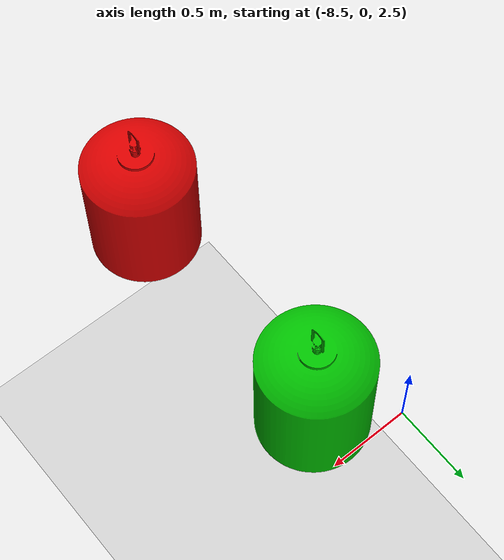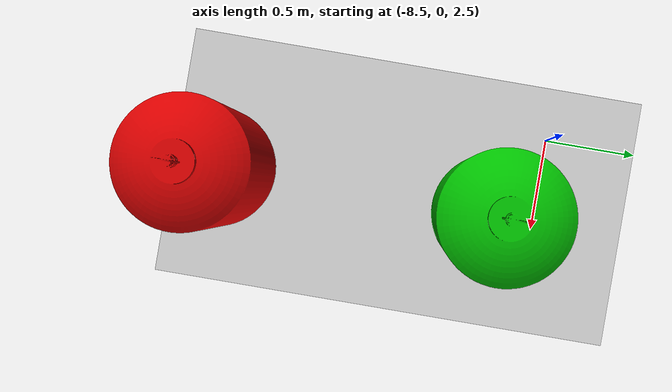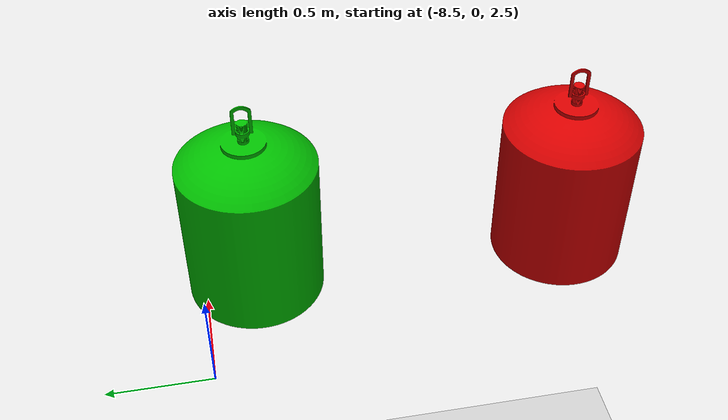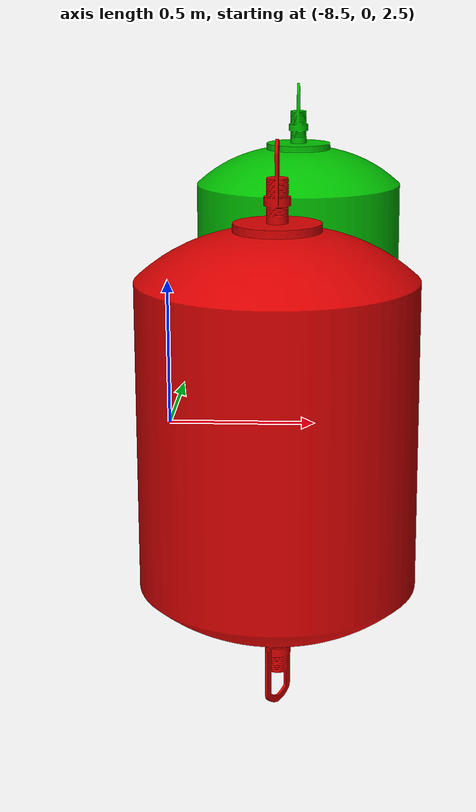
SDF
<?xml version="1.0" encoding="UTF-8"?>
<sdf version="1.9">

  <world name="interceptor_world">

    <physics name="default_physics" type="ode">
      <max_step_size>0.004</max_step_size>
      <real_time_factor>1.0</real_time_factor>
      <real_time_update_rate>250</real_time_update_rate>
    </physics>

    <gravity>0 0 -9.80665</gravity>

    <magnetic_field>
      6e-06 2.3e-05 -4.2e-05
    </magnetic_field>

    <atmosphere type="adiabatic"/>

    <spherical_coordinates>
      <surface_model>EARTH_WGS84</surface_model>
      <world_frame_orientation>ENU</world_frame_orientation>
      <latitude_deg>47.397971057728974</latitude_deg>
      <longitude_deg>8.546163739800146</longitude_deg>
      <elevation>0</elevation>
      <heading_deg>0</heading_deg>
    </spherical_coordinates>

    <scene>
      <grid>true</grid>
      <ambient>0.5 0.5 0.5 1</ambient>
      <background>0.7 0.7 0.7 1</background>
      <shadows>false</shadows>
    </scene>

    <model name="ground_plane">
      <static>true</static>

      <link name="link">

        <collision name="collision">
          <geometry>
            <plane>
              <normal>0 0 1</normal>
              <size>500 500</size>
            </plane>
          </geometry>

          <surface>
            <friction>
              <ode>
                <mu>1</mu>
                <mu2>1</mu2>
              </ode>
            </friction>
          </surface>
        </collision>

        <visual name="visual">
          <geometry>
            <plane>
              <normal>0 0 1</normal>
              <size>500 500</size>
            </plane>
          </geometry>

          <material>
            <ambient>0.8 0.8 0.8 1</ambient>
            <diffuse>0.8 0.8 0.8 1</diffuse>
            <specular>0.1 0.1 0.1 1</specular>
          </material>
        </visual>

      </link>
    </model>

    <light name="sun" type="directional">
      <pose>0 0 500 0 0 0</pose>
      <cast_shadows>false</cast_shadows>
      <intensity>1</intensity>
      <direction>-0.2 0.5 -0.8</direction>
      <diffuse>0.9 0.9 0.9 1</diffuse>
      <specular>0.2 0.2 0.2 1</specular>

      <attenuation>
        <range>2000</range>
        <constant>1</constant>
        <linear>0</linear>
        <quadratic>0</quadratic>
      </attenuation>
    </light>

    <!-- Birinci test: iki duba da sabit -->
    <include>
      <uri>model://red_buoy</uri>
      <name>moving_red_buoy</name>
      <pose>-8.0 -0.75 3 0 0 0</pose>
    </include>

    <include>
      <uri>model://green_buoy</uri>
      <name>fixed_green_buoy</name>
      <pose>-8.0 0.75 3 0 0 0</pose>
    </include>

  </world>

</sdf>

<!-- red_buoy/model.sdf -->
<sdf version="1.9">
  <model name="red_buoy">
    <static>true</static>

    <link name="link">

      <visual name="visual">

        <!-- STL modeli Y ekseninde dik export edildigi icin
             Gazebo Z-up sistemine 90 derece cevriliyor. -->
        <pose>0 0 0 1.5708 0 0</pose>

        <cast_shadows>false</cast_shadows>

        <geometry>
          <mesh>
            <uri>model://red_buoy/meshes/buoy.stl</uri>
          </mesh>
        </geometry>

        <material>
          <!-- Dengeli, saf ve mat kirmizi -->
          <ambient>0.55 0.00 0.00 1</ambient>
          <diffuse>0.85 0.00 0.00 1</diffuse>
          <specular>0.00 0.00 0.00 1</specular>
          <emissive>0.02 0.00 0.00 1</emissive>

          <pbr>
            <metal>
              <metalness>0.0</metalness>
              <roughness>1.0</roughness>
            </metal>
          </pbr>
        </material>

      </visual>

      <collision name="collision">
        <geometry>
          <cylinder>
            <radius>0.35</radius>
            <length>1.2</length>
          </cylinder>
        </geometry>
      </collision>

    </link>
  </model>
</sdf>

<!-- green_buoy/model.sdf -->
<sdf version="1.9">
  <model name="green_buoy">
    <static>true</static>

    <link name="link">

      <visual name="visual">

        <!-- STL modeli Y ekseninde dik export edildigi icin
             Gazebo Z-up sistemine 90 derece cevriliyor. -->
        <pose>0 0 0 1.5708 0 0</pose>

        <cast_shadows>false</cast_shadows>

        <geometry>
          <mesh>
            <uri>model://green_buoy/meshes/buoy.stl</uri>
          </mesh>
        </geometry>

        <material>
          <!-- Dengeli, saf ve mat kirmizi -->
          <ambient>0.00 0.40 0.00 1</ambient>
          <diffuse>0.00 0.75 0.00 1</diffuse>
          <specular>0.00 0.00 0.00 1</specular>
          <emissive>0.00 0.02 0.00 1</emissive>

          <pbr>
            <metal>
              <metalness>0.0</metalness>
              <roughness>1.0</roughness>
            </metal>
          </pbr>
        </material>

      </visual>

      <collision name="collision">
        <geometry>
          <cylinder>
            <radius>0.35</radius>
            <length>1.2</length>
          </cylinder>
        </geometry>
      </collision>

    </link>
  </model>
</sdf>
